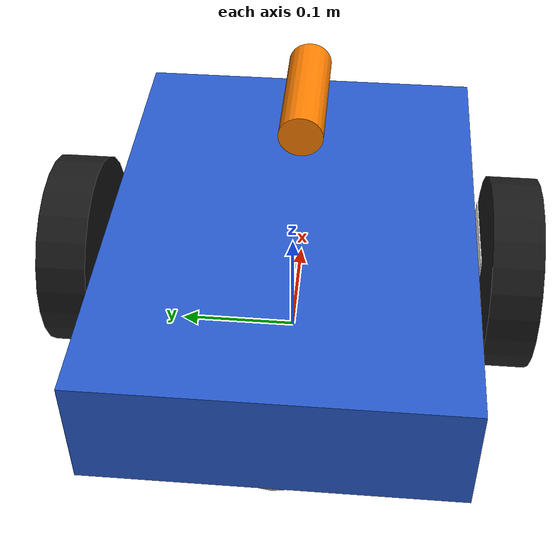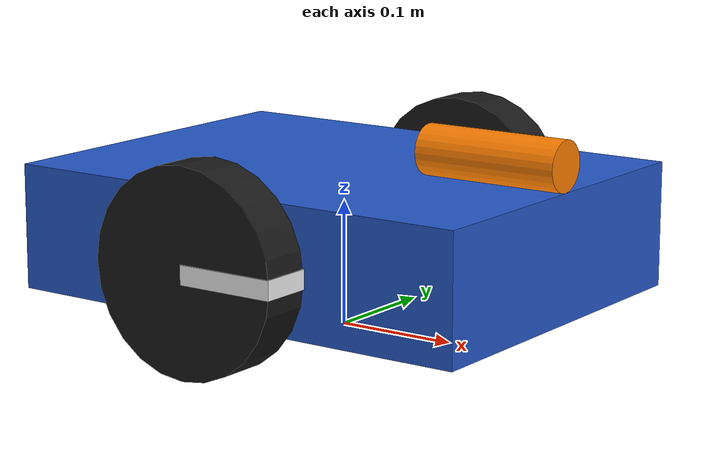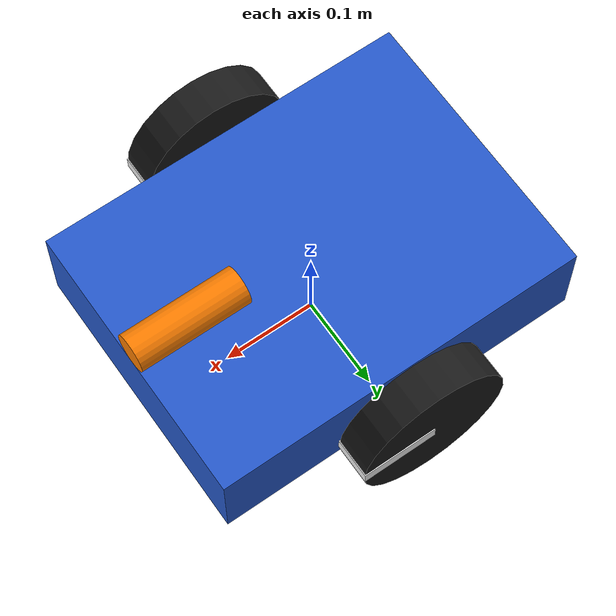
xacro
<?xml version="1.0"?>

<robot name="diff_drive_robot" xmlns:xacro="http://www.ros.org/wiki/xacro">

  <xacro:include filename="$(find das_mr_r2c)/urdf/common.xacro"/>
  <xacro:include filename="$(find das_mr_r2c)/urdf/diff_drive/diff_drive.ros2_control.xacro"/>

  <xacro:property name="base_length"      value="0.40"/>
  <xacro:property name="base_width"       value="0.30"/>
  <xacro:property name="base_height"      value="0.10"/>
  <xacro:property name="wheel_radius"     value="0.08"/>
  <xacro:property name="wheel_width"      value="0.04"/>
  <xacro:property name="wheel_separation" value="0.36"/>
  <xacro:property name="caster_radius"    value="0.04"/>

  <link name="base_footprint"/>

  <link name="base_link">
    <visual>
      <geometry><box size="${base_length} ${base_width} ${base_height}"/></geometry>
      <material name="blue"/>
    </visual>
    <collision>
      <geometry><box size="${base_length} ${base_width} ${base_height}"/></geometry>
    </collision>
    <xacro:box_inertia m="5.0" x="${base_length}" y="${base_width}" z="${base_height}"/>
  </link>

  <joint name="base_joint" type="fixed">
    <parent link="base_footprint"/>
    <child link="base_link"/>
    <origin xyz="0 0 ${wheel_radius}" rpy="0 0 0"/>
  </joint>

  <link name="front_marker_link">
    <visual>
      <origin xyz="0 0 0" rpy="0 ${pi/2} 0"/>
      <geometry><cylinder radius="0.02" length="0.12"/></geometry>
      <material name="orange"/>
    </visual>
  </link>
  <joint name="front_marker_joint" type="fixed">
    <parent link="base_link"/>
    <child link="front_marker_link"/>
    <origin xyz="${base_length/2 - 0.06} 0 ${base_height/2 + 0.02}" rpy="0 0 0"/>
  </joint>

  <xacro:macro name="drive_wheel" params="side y_reflect">
    <link name="${side}_wheel_link">
      <visual>
        <origin xyz="0 0 0" rpy="${pi/2} 0 0"/>
        <geometry><cylinder radius="${wheel_radius}" length="${wheel_width}"/></geometry>
        <material name="black"/>
      </visual>
      <visual>
        <origin xyz="${wheel_radius/2} 0 0" rpy="0 0 0"/>
        <geometry><box size="${wheel_radius} ${wheel_width + 0.002} 0.015"/></geometry>
        <material name="white"/>
      </visual>
      <collision>
        <origin xyz="0 0 0" rpy="${pi/2} 0 0"/>
        <geometry><cylinder radius="${wheel_radius}" length="${wheel_width}"/></geometry>
      </collision>
      <xacro:cylinder_inertia m="0.5" r="${wheel_radius}" h="${wheel_width}"/>
    </link>

    <joint name="${side}_wheel_joint" type="continuous">
      <parent link="base_link"/>
      <child link="${side}_wheel_link"/>
      <origin xyz="0 ${y_reflect * wheel_separation / 2} 0" rpy="0 0 0"/>
      <axis xyz="0 1 0"/>
    </joint>
  </xacro:macro>

  <xacro:drive_wheel side="left"  y_reflect="1"/>
  <xacro:drive_wheel side="right" y_reflect="-1"/>

  <link name="caster_link">
    <visual>
      <geometry><sphere radius="${caster_radius}"/></geometry>
      <material name="grey"/>
    </visual>
    <collision>
      <geometry><sphere radius="${caster_radius}"/></geometry>
    </collision>
  </link>
  <joint name="caster_joint" type="fixed">
    <parent link="base_link"/>
    <child link="caster_link"/>
    <origin xyz="${-base_length/2 + caster_radius} 0 ${caster_radius - wheel_radius}" rpy="0 0 0"/>
  </joint>

  <xacro:diff_drive_ros2_control name="DiffDriveMockSystem"/>

</robot>

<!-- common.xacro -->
<!-- Shared materials and inertia helpers (inertias are only cosmetic here,
     there is no physics simulation – the mock hardware just integrates commands). -->
<robot xmlns:xacro="http://www.ros.org/wiki/xacro">

  <material name="blue"><color rgba="0.15 0.35 0.8 1.0"/></material>
  <material name="black"><color rgba="0.1 0.1 0.1 1.0"/></material>
  <material name="grey"><color rgba="0.6 0.6 0.6 1.0"/></material>
  <material name="orange"><color rgba="1.0 0.5 0.0 1.0"/></material>
  <material name="white"><color rgba="0.95 0.95 0.95 1.0"/></material>

  <xacro:macro name="box_inertia" params="m x y z">
    <inertial>
      <mass value="${m}"/>
      <inertia ixx="${m*(y*y+z*z)/12}" ixy="0" ixz="0"
               iyy="${m*(x*x+z*z)/12}" iyz="0"
               izz="${m*(x*x+y*y)/12}"/>
    </inertial>
  </xacro:macro>

  <xacro:macro name="cylinder_inertia" params="m r h">
    <inertial>
      <mass value="${m}"/>
      <inertia ixx="${m*(3*r*r+h*h)/12}" ixy="0" ixz="0"
               iyy="${m*(3*r*r+h*h)/12}" iyz="0"
               izz="${m*r*r/2}"/>
    </inertial>
  </xacro:macro>

</robot>
